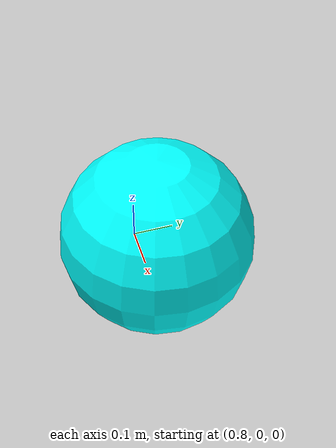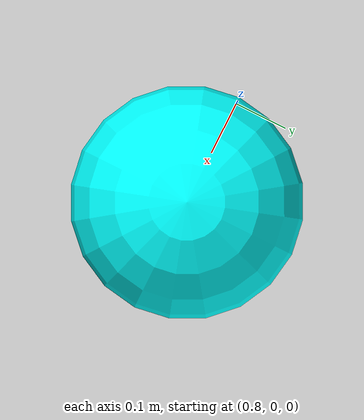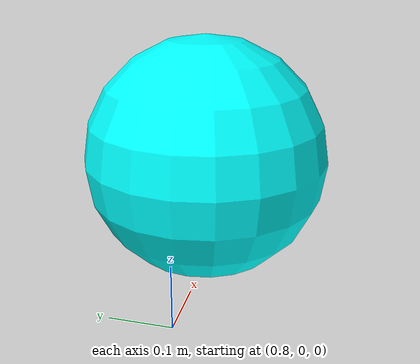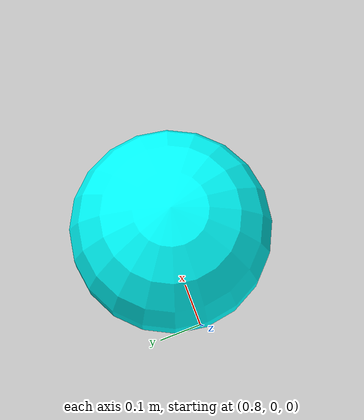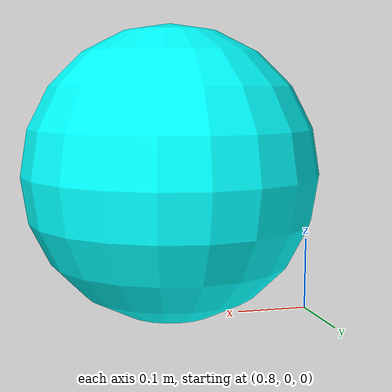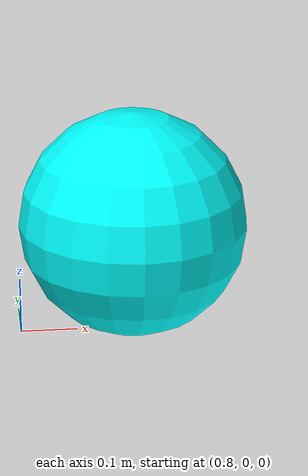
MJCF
<mujoco model="ballbot">
    <compiler angle="radian" autolimits="true" boundmass="0.000001" boundinertia="0.000001" balanceinertia="true" discardvisual="true"/>
    <worldbody>
        <body name="ballbot" gravcomp="1" pos="0.000000 0.000000 0.000000" quat="1.000000 0.000000 0.000000 0.000000">
            <body name="ball_x" pos="1 0 0.2" gravcomp="1">
                <inertial pos="0 0 0" mass="1" diaginertia="0.001667 0.001667 0.001667"/>
                <joint name="transx_joint" pos="0 0 0" axis="1 0 0" type="slide" range="-100 100"/>
                <body name="ball_y" gravcomp="1">
                    <inertial pos="0 0 0" mass="1" diaginertia="0.001667 0.001667 0.001667"/>
                    <joint name="transy_joint" pos="0 0 0" axis="0 1 0" type="slide" range="-100 100"/>
                    <body name="ball_z" gravcomp="1">
                        <inertial pos="0 0 0" mass="1" diaginertia="0.001667 0.001667 0.001667"/>
                        <joint name="transz_joint" pos="0 0 0" axis="0 0 1" type="slide" range="-100 100"/>
                        <body name="ball_rotx" gravcomp="1">
                            <inertial pos="0 0 0" mass="1" diaginertia="0.001667 0.001667 0.001667"/>
                            <joint name="rotx_joint" pos="0 0 0" axis="1 0 0" range="-3.14 3.14"/>
                            <body name="ball_roty" gravcomp="1">
                                <inertial pos="0 0 0" mass="1" diaginertia="0.001667 0.001667 0.001667"/>
                                <joint name="roty_joint" pos="0 0 0" axis="0 1 0" range="-3.14 3.14"/>
                                <body name="ball_link" gravcomp="1">
                                    <inertial pos="0 0 0" mass="1" diaginertia="0.001667 0.001667 0.001667"/>
                                    <joint name="rotz_joint" pos="0 0 0" axis="0 0 1" range="-3.14 3.14"/>
                                    <geom size="0.2" rgba="0 1 1 1"/>
                                </body>
                            </body>
                        </body>
                    </body>
                </body>
            </body>
        </body>
    </worldbody>
</mujoco>
